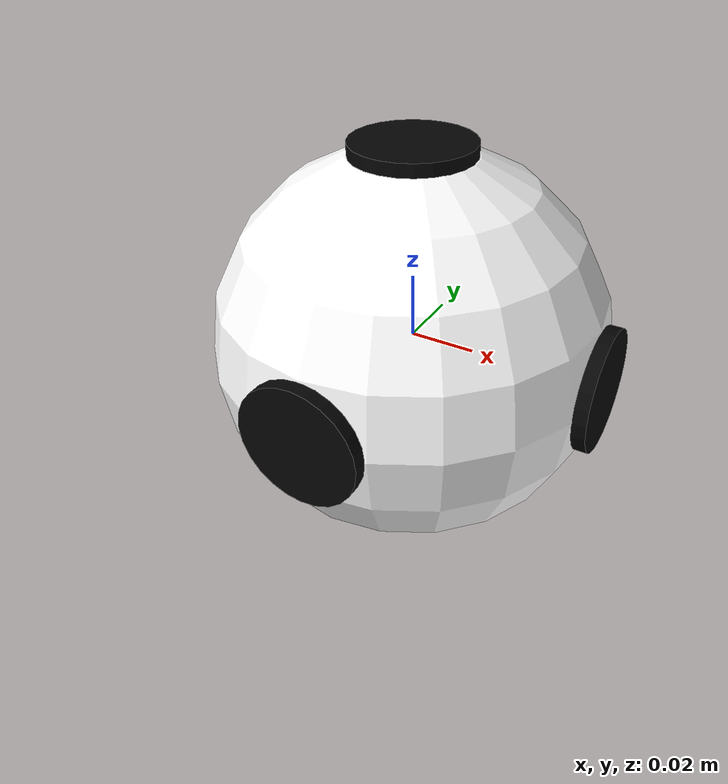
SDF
<?xml version="1.0"?>
<sdf version="1.8">
  <model name="soccer_ball">
    <link name="ball_link">
      <inertial>
        <mass>0.43</mass>
        <inertia>
          <ixx>0.0006192</ixx>
          <iyy>0.0006192</iyy>
          <izz>0.0006192</izz>
        </inertia>
      </inertial>

      <collision name="ball_collision">
        <geometry>
          <sphere>
            <radius>0.06</radius>
          </sphere>
        </geometry>

        <surface>
          <friction>
            <ode>
              <mu>0.6</mu>
              <mu2>0.6</mu2>
            </ode>
          </friction>

          <bounce>
            <restitution_coefficient>0.5</restitution_coefficient>
            <threshold>0.1</threshold>
          </bounce>
        </surface>
      </collision>

      <visual name="ball_visual">
        <geometry>
          <sphere>
            <radius>0.06</radius>
          </sphere>
        </geometry>

        <material>
          <ambient>0.9 0.9 0.9 1</ambient>
          <diffuse>1 1 1 1</diffuse>
        </material>
      </visual>

      <visual name="top_panel">
        <pose>0 0 0.059 0 0 0</pose>
        <geometry>
          <cylinder><radius>0.018</radius><length>0.004</length></cylinder>
        </geometry>
        <material>
          <ambient>0.01 0.01 0.01 1</ambient>
          <diffuse>0.02 0.02 0.02 1</diffuse>
        </material>
      </visual>

      <visual name="bottom_panel">
        <pose>0 0 -0.059 0 0 0</pose>
        <geometry>
          <cylinder><radius>0.018</radius><length>0.004</length></cylinder>
        </geometry>
        <material>
          <ambient>0.01 0.01 0.01 1</ambient>
          <diffuse>0.02 0.02 0.02 1</diffuse>
        </material>
      </visual>

      <visual name="front_panel">
        <pose>0.059 0 0 0 1.5708 0</pose>
        <geometry>
          <cylinder><radius>0.018</radius><length>0.004</length></cylinder>
        </geometry>
        <material>
          <ambient>0.01 0.01 0.01 1</ambient>
          <diffuse>0.02 0.02 0.02 1</diffuse>
        </material>
      </visual>

      <visual name="back_panel">
        <pose>-0.059 0 0 0 1.5708 0</pose>
        <geometry>
          <cylinder><radius>0.018</radius><length>0.004</length></cylinder>
        </geometry>
        <material>
          <ambient>0.01 0.01 0.01 1</ambient>
          <diffuse>0.02 0.02 0.02 1</diffuse>
        </material>
      </visual>

      <visual name="left_panel">
        <pose>0 0.059 0 1.5708 0 0</pose>
        <geometry>
          <cylinder><radius>0.018</radius><length>0.004</length></cylinder>
        </geometry>
        <material>
          <ambient>0.01 0.01 0.01 1</ambient>
          <diffuse>0.02 0.02 0.02 1</diffuse>
        </material>
      </visual>

      <visual name="right_panel">
        <pose>0 -0.059 0 1.5708 0 0</pose>
        <geometry>
          <cylinder><radius>0.018</radius><length>0.004</length></cylinder>
        </geometry>
        <material>
          <ambient>0.01 0.01 0.01 1</ambient>
          <diffuse>0.02 0.02 0.02 1</diffuse>
        </material>
      </visual>
    </link>

    <plugin
      filename="gz-sim-pose-publisher-system"
      name="gz::sim::systems::PosePublisher">
      <publish_model_pose>true</publish_model_pose>
      <publish_link_pose>false</publish_link_pose>
      <use_pose_vector_msg>true</use_pose_vector_msg>
    </plugin>
  </model>
</sdf>
